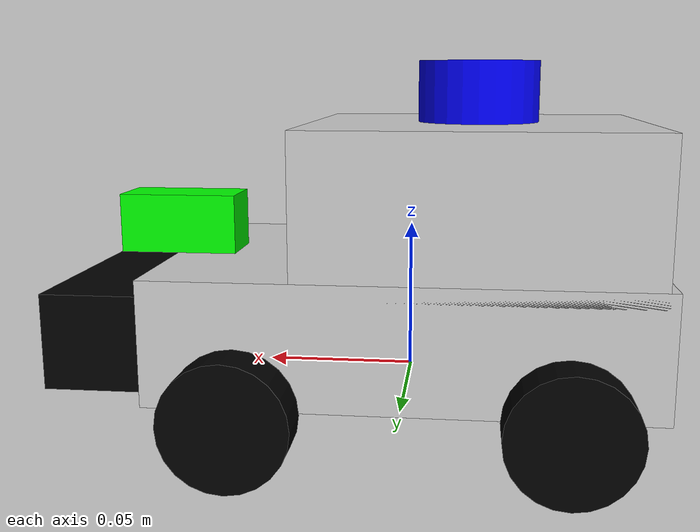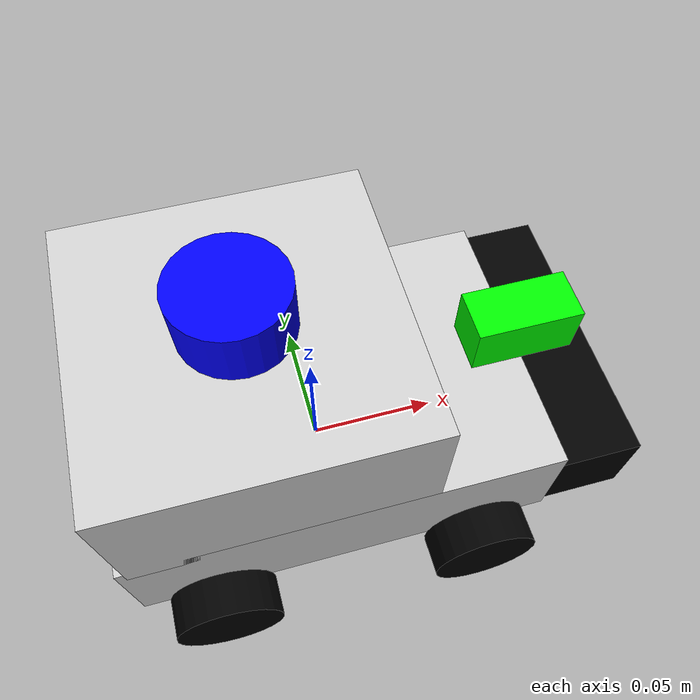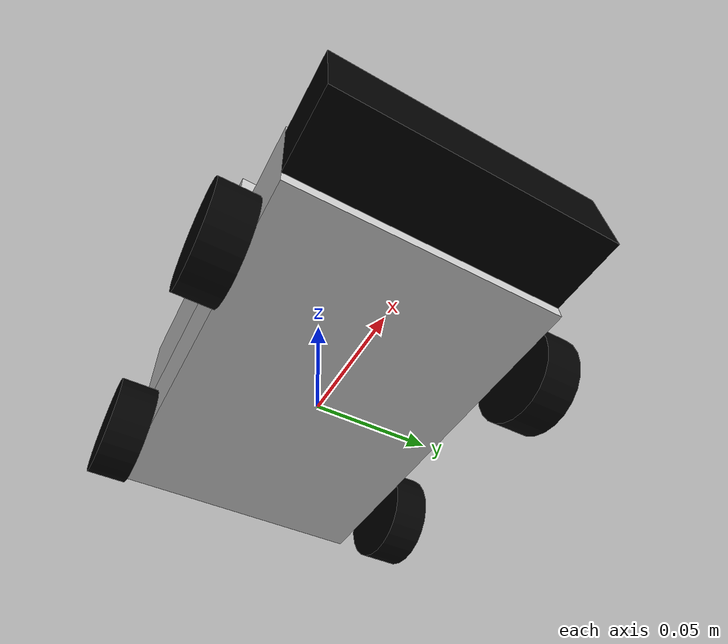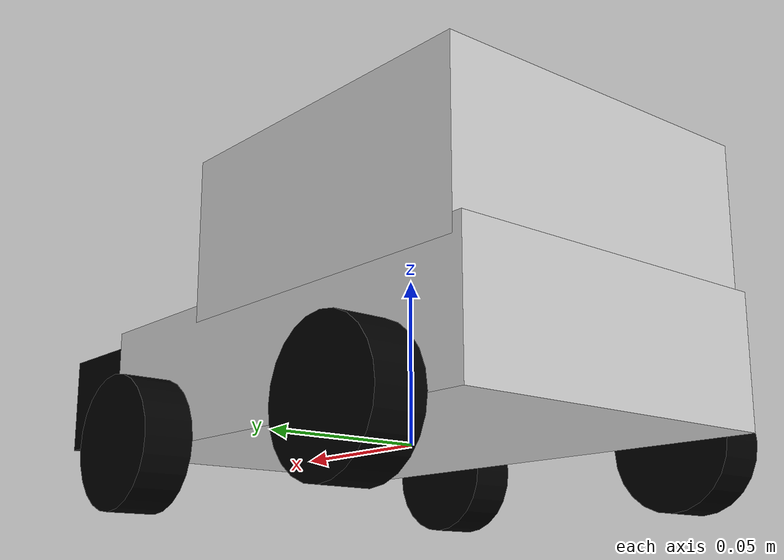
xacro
<?xml version="1.0"?>

<robot name="simple_robot" xmlns:xacro="http://www.ros.org/wiki/xacro">

  <xacro:property name="length_wheel" value="0.015" />
  <xacro:property name="radius_wheel" value="0.02" />
  <xacro:property name="PI" value="3.1415926"/>
  <xacro:macro name="default_inertial" params="mass">
    <inertial>
      <mass value="${mass}" />
      <inertia ixx="0.01" ixy="0.0" ixz="0.0"
                    iyy="0.01" iyz="0.0" izz="0.01" />
    </inertial>
  </xacro:macro>

  <xacro:macro name="cylinder_inertial_matrix" params="m r h">
    <inertial>
      <origin xyz="0 0 0" />
      <mass value="${m}" />
      <inertia ixx="${m*(3*r*r+h*h)/12}" ixy = "0" ixz = "0" iyy="${m*(3*r*r+h*h)/12}" iyz = "0" izz="${m*r*r/2}" />
    </inertial>
  </xacro:macro>

  <!-- base_link to livox_frame -->
  <xacro:arg name="xyz" default="0.12 0.0 0.175" />
  <xacro:arg name="rpy" default="0 0 0" />

  <link name="base_link">
    <visual>
      <geometry>
        <box size="0.11 .16 .04"/>
      </geometry>
      <origin rpy="0 0 ${PI/2}" xyz="0 0 0.02"/>
      <material name="grey">
        <color rgba="0.8 0.8 0.8 1"/>
      </material>
    </visual>
    <collision>
      <geometry>
        <box size="0.11 .16 .04"/>
      </geometry>
      <origin rpy="0 0 ${PI/2}" xyz="0 0 0.02"/>
    </collision>
    <xacro:default_inertial mass="4.0"/>
  </link>

  <link name="gimbal">
    <visual>
      <geometry>
        <box size="0.11 .11 .05"/>
      </geometry>
      <origin rpy="0 0 ${PI/2}" xyz="0 0 0.01"/>
      <material name="grey"/>
    </visual>
    <collision>
      <geometry>
        <box size="0.11 .11 .05"/>
      </geometry>
      <origin rpy="0 0 ${PI/2}" xyz="0 0 0.01"/>
    </collision>
    <xacro:default_inertial mass="3.0"/>
  </link>

  <joint name="gimbal_to_baselink" type="fixed">
    <parent link="base_link"/>
    <child link="gimbal" />
    <origin xyz="-0.022 0 0.05" rpy="0 0 0" />
    <axis xyz="0 0 1" />
  </joint>

  <link name="head">
    <visual>
      <geometry>
        <box size="0.11 .03 .03"/>
      </geometry>
      <origin rpy="0 0 ${PI/2}" xyz="0 0 0"/>
      <material name="black">
        <color rgba="0 0 0 1"/>
      </material>
    </visual>
    <collision>
      <geometry>
        <box size="0.11 .03 .03"/>
      </geometry>
      <origin rpy="0 0 ${PI/2}" xyz="0.08 0 0"/>
    </collision>
    <xacro:default_inertial mass="1.0"/>
  </link>

  <joint name="head_to_baselink" type="fixed">
    <parent link="base_link"/>
    <child link="head" />
    <origin xyz="0.095 0 0.02" rpy="0 0 0" />
    <axis xyz="1 0 0" />
  </joint>

  <link name="laser">
    <visual>
      <origin xyz="0 0 0" rpy="0 0 0" />
      <geometry>
        <cylinder radius="0.02" length="0.03" />
      </geometry>
      <material name="blue">
        <color rgba="0 0 1 1"/>
      </material>
    </visual>
    <collision>
      <geometry>
        <cylinder radius="0.02" length="0.03" />
      </geometry>
    </collision>
    <xacro:cylinder_inertial_matrix m="0.4" r="0.02" h="0.03" />
  </link>

  <joint name="laser_joint" type="fixed">
    <parent link="gimbal" />
    <child link="laser" />
    <origin xyz="0 0 0.04" rpy="0 0 0" />
    <axis xyz="1 0 0" />
  </joint>

  <link name="camera">
    <visual>
      <geometry>
        <box size="0.04 0.02 0.02" />
      </geometry>
      <origin xyz="0.0 0.0 0.0" rpy="0.0 0.0 0.0" />
      <material name="green">
        <color rgba="0 1 0 1"/>
      </material>
    </visual>
    <collision>
      <geometry>
        <box size="0.04 0.02 0.02" />
      </geometry>
    </collision>
    <xacro:default_inertial mass="0.4"/>
  </link>

  <joint name="camera_joint" type="fixed">
    <parent link="base_link" />
    <child link="camera" />
    <origin xyz="0.08 0 0.05" />
  </joint>

  <link name="wheel_1">
    <visual>
      <geometry>
        <cylinder length="${length_wheel}" radius="${radius_wheel}"/>
      </geometry>
      <origin rpy="0 0 0" xyz="0 0 0"/>
      <material name="black">
        <color rgba="0 0 0 1"/>
      </material>
    </visual>
    <collision>
      <geometry>
        <cylinder length="${length_wheel}" radius="${radius_wheel}"/>
      </geometry>
    </collision>
    <mu1>0.5</mu1>
    <mu2>0.5</mu2>
    <xacro:default_inertial mass="0.5"/>
  </link>

  <link name="wheel_2">
    <visual>
      <geometry>
        <cylinder length="${length_wheel}" radius="${radius_wheel}"/>
      </geometry>
      <origin rpy="0 0 0" xyz="0 0 0"/>
      <material name="black"/>
    </visual>
    <collision>
      <geometry>
        <cylinder length="${length_wheel}" radius="${radius_wheel}"/>
      </geometry>
    </collision>
    <mu1>0.5</mu1>
    <mu2>0.5</mu2>
    <xacro:default_inertial mass="0.5"/>
  </link>

  <link name="wheel_3">
    <visual>
      <geometry>
        <cylinder length="${length_wheel}" radius="${radius_wheel}"/>
      </geometry>
      <origin rpy="0 0 0" xyz="0 0 0"/>
      <material name="black"/>
    </visual>
    <collision>
      <geometry>
        <cylinder length="${length_wheel}" radius="${radius_wheel}"/>
      </geometry>
    </collision>
    <mu1>0.5</mu1>
    <mu2>0.5</mu2>
    <xacro:default_inertial mass="0.5"/>
  </link>

  <link name="wheel_4">
    <visual>
      <geometry>
        <cylinder length="${length_wheel}" radius="${radius_wheel}"/>
      </geometry>
      <origin rpy="0 0 0" xyz="0 0 0" />
      <material name="black"/>
    </visual>
    <collision>
      <geometry>
        <cylinder length="${length_wheel}" radius="${radius_wheel}"/>
      </geometry>
    </collision>
    <mu1>0.5</mu1>
    <mu2>0.5</mu2>
    <xacro:default_inertial mass="0.5"/>
  </link>

  <joint name="base_to_wheel1" type="continuous">
    <parent link="base_link"/>
    <child link="wheel_1"/>
    <origin rpy="${-PI/2} 0 0" xyz="0.05 0.064 0"/>
    <axis xyz="0 0 1" />
  </joint>

  <joint name="base_to_wheel2" type="continuous">
    <axis xyz="0 0 1" />
    <anchor xyz="0 0 0" />
    <limit effort="100" velocity="100" />
    <parent link="base_link"/>
    <child link="wheel_2"/>
    <origin rpy="${-PI/2} 0 0" xyz="-0.05 0.064 0"/>
  </joint>

  <joint name="base_to_wheel3" type="continuous">
    <parent link="base_link"/>
    <axis xyz="0 0 1" />
    <child link="wheel_3"/>
    <origin rpy="${-PI/2} 0 0" xyz="0.05 -0.064 0"/>
  </joint>

  <joint name="base_to_wheel4" type="continuous">
    <parent link="base_link"/>
    <axis xyz="0 0 1" />
    <child link="wheel_4"/>
    <origin rpy="${-PI/2} 0 0" xyz="-0.05 -0.064 0"/>
  </joint>

  <!-- Gazebo插件设置相关 -->
  <gazebo reference="base_link">
    <material>Gazebo/White</material>
  </gazebo>
  <gazebo reference="gimbal">
    <material>Gazebo/White</material>
  </gazebo>
  <gazebo reference="head">
    <material>Gazebo/Black</material>
  </gazebo>
  <gazebo reference="wheel_1">
    <material>Gazebo/Black</material>
  </gazebo>
  <gazebo reference="wheel_2">
    <material>Gazebo/Black</material>
  </gazebo>
  <gazebo reference="wheel_3">
    <material>Gazebo/Black</material>
  </gazebo>
  <gazebo reference="wheel_4">
    <material>Gazebo/Black</material>
  </gazebo>

  <gazebo reference="laser">
    <material>Gazebo/Blue</material>
    <sensor type="ray" name="laser">
      <pose>0 0 0 0 0 0</pose>
      <visualize>false</visualize>
      <update_rate>10.0</update_rate>
      <ray>
        <scan>
          <horizontal>
              <samples>360</samples>           <!--旋转一周采的点数-->
              <resolution>1</resolution>       <!--每射线测距测距-->
              <min_angle>-3.14</min_angle>     <!--采样范围，负逆正顺-->
              <max_angle>3.14</max_angle>
          </horizontal>
        </scan>
        <range>
          <min>0.15</min>    <!--可检测距离  米-->
          <max>6.0</max>
          <resolution>0.01</resolution>
        </range>
        <noise>
          <type>gaussian</type>
          <mean>0.0</mean>
          <stddev>0.01</stddev>
        </noise>
      </ray>
      <plugin name="gazebo_laser" filename="libgazebo_ros_ray_sensor.so">
        <topic>scan</topic>
        <ros>
          <remapping>~/out:=scan</remapping>
        </ros>
        <output_type>sensor_msgs/LaserScan</output_type>
      </plugin>
      <topic>scan</topic>
    </sensor>
  </gazebo>

  <gazebo reference="camera">
    <material>Gazebo/Green</material>
    <gravity>true</gravity>
    <sensor type="camera" name="camera_sensor">
      <update_rate>30.0</update_rate>
      <camera name="head">
        <horizontal_fov>1.3962634</horizontal_fov>
        <image>
          <width>1280</width>
          <height>720</height>
          <format>R8G8B8</format>
        </image>
        <clip>
          <near>0.02</near>
          <far>300</far>
        </clip>
        <noise>
          <type>gaussian</type>
          <mean>0.0</mean>
          <stddev>0.007</stddev>
        </noise>
      </camera>
      <plugin name="gazebo_camera" filename="libgazebo_ros_camera.so">
        <alwaysOn>true</alwaysOn>
        <updateRate>0.0</updateRate>
        <cameraName>/camera</cameraName>
        <imageTopicName>image_raw</imageTopicName>
        <cameraInfoTopicName>camera_info</cameraInfoTopicName>
        <frameName>camera_link</frameName>
        <hackBaseline>0.07</hackBaseline>
        <distortionK1>0.0</distortionK1>
        <distortionK2>0.0</distortionK2>
        <distortionK3>0.0</distortionK3>
        <distortionT1>0.0</distortionT1>
        <distortionT2>0.0</distortionT2>
      </plugin>
    </sensor>
  </gazebo>

  <!-- Drive controller plugin-->
  <!-- https://github.com/ros-simulation/gazebo_ros_pkgs/wiki/ROS-2-Migration:-Planar-Move -->
  <gazebo>
    <plugin name="mecanum_controller" filename="libgazebo_ros_planar_move.so">
      <ros>
        <!-- Add a namespace -->
        <namespace>/</namespace>
        <!-- Remap the default topic -->
        <remapping>cmd_vel:=cmd_vel</remapping>
        <remapping>odom:=odom</remapping>
      </ros>

      <!-- Set control loop update rate -->
      <update_rate>100</update_rate>
      <!-- Set odom publish rate -->
      <publish_rate>10</publish_rate>

      <!-- Set if odom required -->
      <publish_odom>true</publish_odom>
      <publish_odom_tf>true</publish_odom_tf>

      <!-- Frame IDs -->
      <odometry_frame>odom</odometry_frame>
      <robot_base_frame>base_link</robot_base_frame>

      <!-- Set odom covariance -->
      <covariance_x>0.0001</covariance_x>
      <covariance_y>0.0001</covariance_y>
      <covariance_yaw>0.01</covariance_yaw>
    </plugin>
  </gazebo>

</robot>
